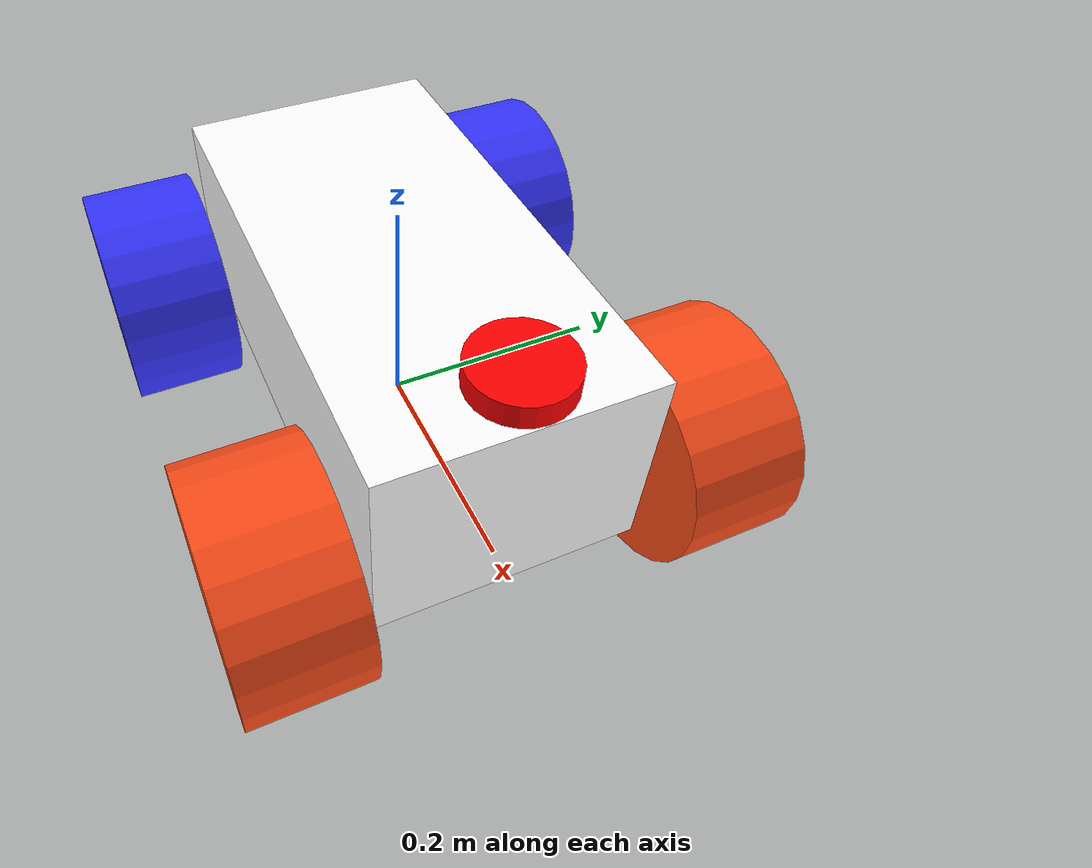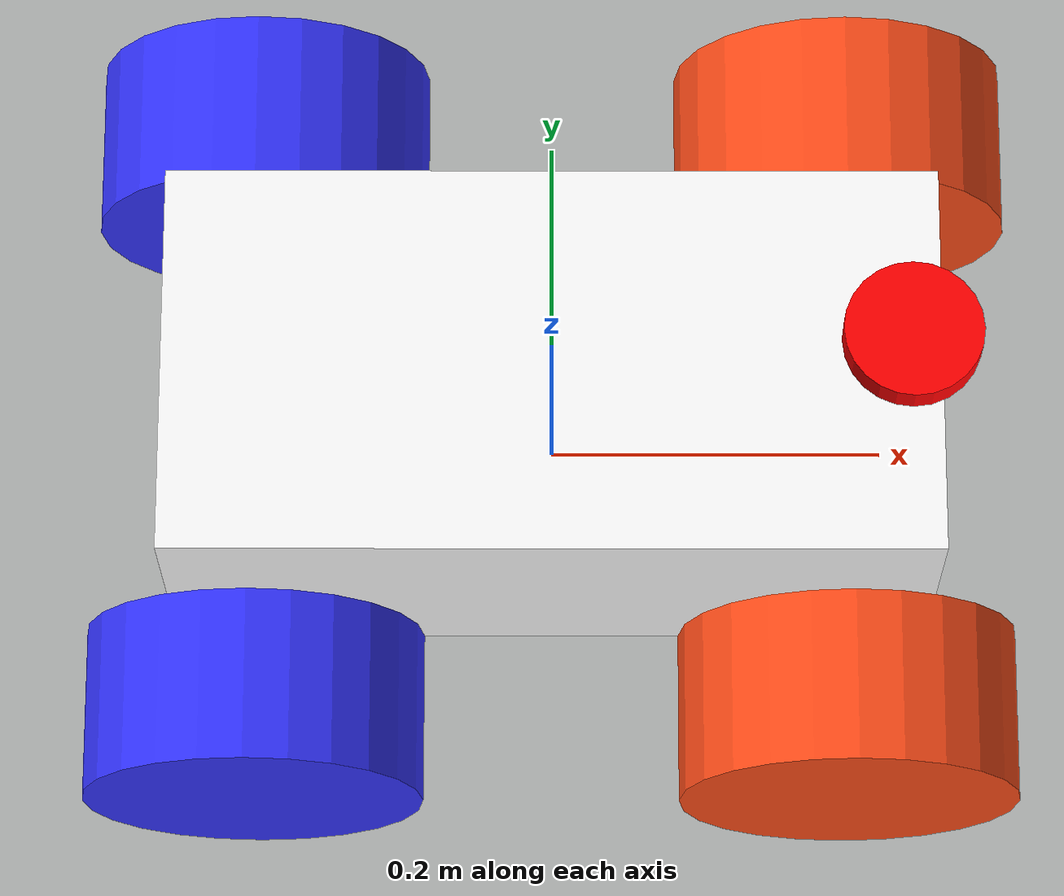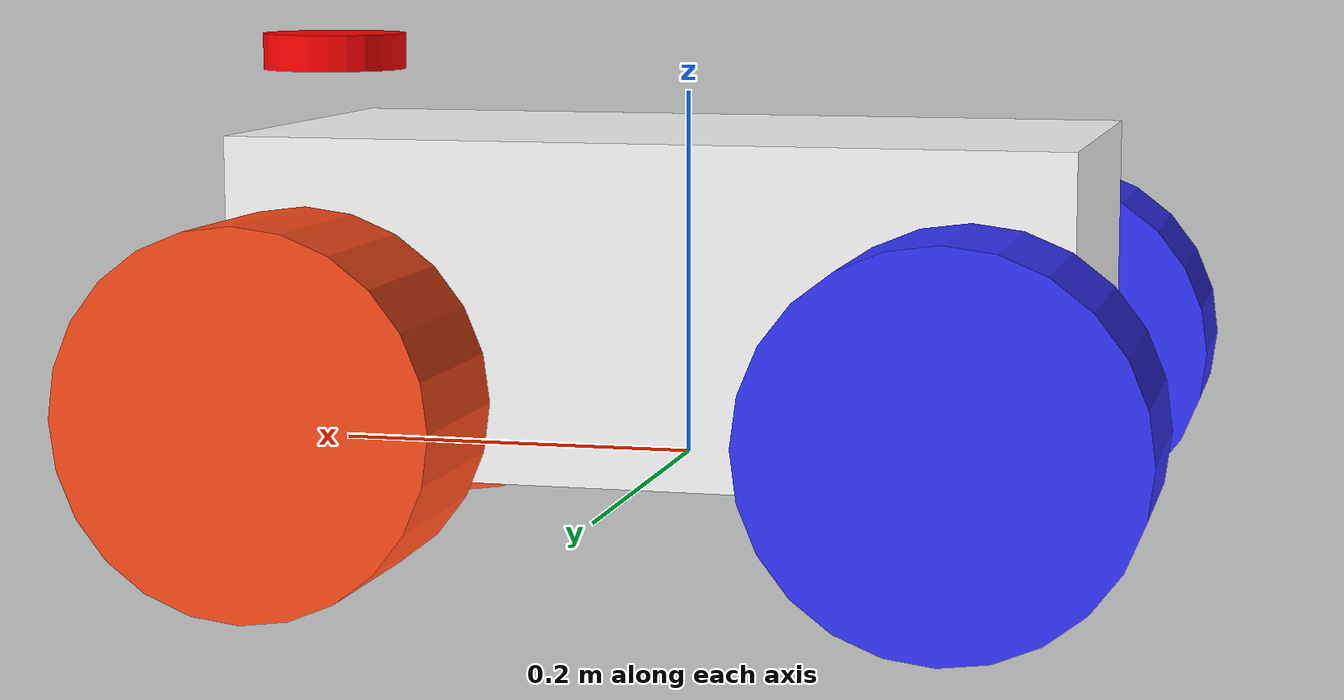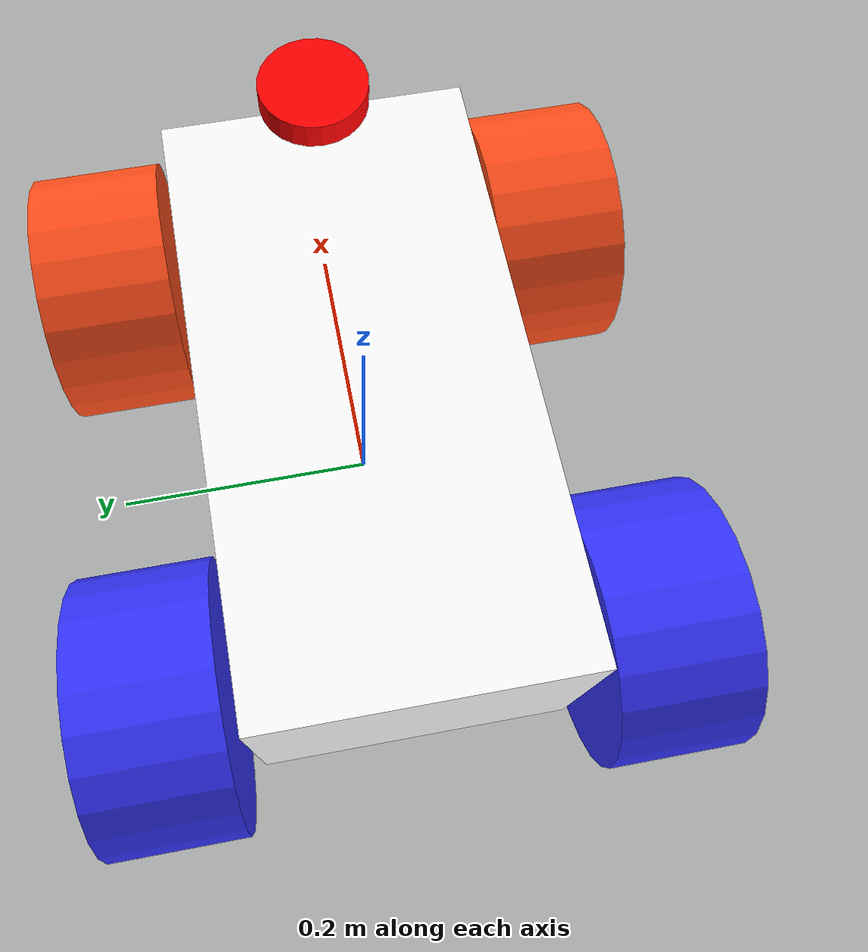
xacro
<?xml version="1.0"?>
<robot xmlns:xacro="http://www.ros.org/wiki/xacro"  name="robot">
    <xacro:include filename="robot_core.urdf.xacro" />
    <xacro:include filename="ros2_control.urdf.xacro" />
    <xacro:include filename="lidar.urdf.xacro" />
</robot>

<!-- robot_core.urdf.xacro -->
<robot xmlns:xacro="http://www.ros.org/wiki/xacro">
    <xacro:include filename="inertial_macros.xacro" />

    <material name="white">
        <color rgba="1 1 1 1" />
    </material>

    <material name="red">
        <color rgba="1 0 0 1" />
    </material>

    <material name="orange">
        <color rgba="1 0.3 0.1 1" />
    </material>

    <material name="blue">
        <color rgba="0.2 0.2 1 1" />
    </material>

    <material name="black">
        <color rgba="0 0 0 1" />
    </material>

    <!-- BASE LINK -->

    <link name="base_link">

    </link>

    <!-- CHASSIS LINK -->

    <joint name="chassis_joint" type="fixed">
        <parent link="base_link" />
        <child link="chassis" />
        <origin xyz="-0.225 0 0" />
    </joint>

    <link name="chassis">
        <visual>
            <origin xyz="0.225 0 0.09" />
            <geometry>
                <box size="0.450 0.23 0.18" />
            </geometry>
            <material name="white" />
        </visual>
        <collision>
            <origin xyz="0.225 0 0.09" />
            <geometry>
                <box size="0.450 0.23 0.18" />
            </geometry>
        </collision>
        <xacro:inertial_box mass="5.0" x="0.450" y="0.23" z="0.18">
            <origin xyz="0.225 0 0.09" rpy="0 0 0" />
        </xacro:inertial_box>
    </link>

    <gazebo reference="chassis">
        <material>Gazebo/White</material>
    </gazebo>

    <!-- LEFT FRONT WHEEL LINK -->

    <joint name="left_front_wheel_joint" type="continuous">
        <parent link="base_link" />
        <child link="left_front_wheel" />
        <origin xyz="0.175 0.178 .045" rpy="-${pi/2} 0 0" />
        <axis xyz="0 0 1" />
        <limit effort="1" velocity="1" />
        <joint_properties damping="1.0" friction="1.0" />
    </joint>

    <link name="left_front_wheel">
        <visual>
            <geometry>
                <cylinder radius="0.1" length="0.1" />
            </geometry>
            <material name="orange" />
        </visual>
        <collision>
            <geometry>
                <sphere radius="0.1" />
            </geometry>
        </collision>
        <xacro:inertial_cylinder mass="1.5" length="0.1" radius="0.1">
            <origin xyz="0 0 0" rpy="0 0 0" />
        </xacro:inertial_cylinder>
    </link>

    <gazebo reference="left_front_wheel">
        <material>Gazebo/Orange</material>
        <mu1 value="0.9" />
        <mu2 value="0.9" />
    </gazebo>

    <!-- LEFT BACK WHEEL LINK -->

    <joint name="left_back_wheel_joint" type="continuous">
        <parent link="base_link" />
        <child link="left_back_wheel" />
        <origin xyz="-0.175 0.178 .045" rpy="-${pi/2} 0 0" />
        <axis xyz="0 0 1" />
        <limit effort="1" velocity="1" />
        <joint_properties damping="1.0" friction="1.0" />
    </joint>

    <link name="left_back_wheel">
        <visual>
            <geometry>
                <cylinder radius="0.1" length="0.1" />
            </geometry>
            <material name="blue" />
        </visual>
        <collision>
            <geometry>
                <sphere radius="0.1" />
            </geometry>
        </collision>
        <xacro:inertial_cylinder mass="1.5" length="0.1" radius="0.1">
            <origin xyz="0 0 0" rpy="0 0 0" />
        </xacro:inertial_cylinder>
    </link>

    <gazebo reference="left_back_wheel">
        <material>Gazebo/Blue</material>
        <mu1 value="0.9" />
        <mu2 value="0.9" />
    </gazebo>

    <!-- RIGHT FRONT WHEEL LINK -->

    <joint name="right_front_wheel_joint" type="continuous">
        <parent link="base_link" />
        <child link="right_front_wheel" />
        <origin xyz="0.175 -0.178 .045" rpy="${pi/2} 0 0" />
        <axis xyz="0 0 -1" />
        <limit effort="1" velocity="1" />
        <joint_properties damping="1.0" friction="1.0" />
    </joint>

    <link name="right_front_wheel">
        <visual>
            <geometry>
                <cylinder radius="0.1" length="0.1" />
            </geometry>
            <material name="orange" />
        </visual>
        <collision>
            <geometry>
                <sphere radius="0.1" />
            </geometry>
        </collision>
        <xacro:inertial_cylinder mass="1.5" length="0.1" radius="0.1">
            <origin xyz="0 0 0" rpy="0 0 0" />
        </xacro:inertial_cylinder>
    </link>

    <gazebo reference="right_front_wheel">
        <material>Gazebo/Orange</material>
        <mu1 value="0.9" />
        <mu2 value="0.9" />
    </gazebo>

    <!-- RIGHT BACK WHEEL LINK -->

    <joint name="right_back_wheel_joint" type="continuous">
        <parent link="base_link" />
        <child link="right_back_wheel" />
        <origin xyz="-0.175 -0.178 .045" rpy="${pi/2} 0 0" />
        <axis xyz="0 0 -1" />
        <limit effort="1" velocity="1" />
        <joint_properties damping="1.0" friction="1.0" />
    </joint>

    <link name="right_back_wheel">
        <visual>
            <geometry>
                <cylinder radius="0.1" length="0.1" />
            </geometry>
            <material name="blue" />
        </visual>
        <collision>
            <geometry>
                <sphere radius="0.1" />
            </geometry>
        </collision>
        <xacro:inertial_cylinder mass="1.5" length="0.1" radius="0.1">
            <origin xyz="0 0 0" rpy="0 0 0" />
        </xacro:inertial_cylinder>
    </link>

    <gazebo reference="right_back_wheel">
        <material>Gazebo/Blue</material>
        <mu1 value="0.9" />
        <mu2 value="0.9" />
    </gazebo>

</robot>

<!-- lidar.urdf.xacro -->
<robot xmlns:xacro="http://www.ros.org/wiki/xacro">
    <joint name="laser_joint" type="fixed">
        <parent link="chassis" />
        <child link="laser_frame" />
        <origin xyz="0.430 0.0 0.22" rpy="0 0 0" />
    </joint>
    <link name="laser_frame">
        <visual>
            <geometry>
                <cylinder radius="0.04" length="0.02" />
            </geometry>
            <material name="red" />
        </visual>
        <collision>
            <geometry>
                <cylinder radius="0.04" length="0.02" />
            </geometry>
        </collision>
        <xacro:inertial_cylinder mass="0.25" length="0.02" radius="0.04">
            <origin xyz="0 0 0" rpy="0 0 0" />
        </xacro:inertial_cylinder>
    </link>

    <gazebo reference="laser_frame">
        <material>Gazebo/Red</material>

        <sensor name="laser" type="ray">
            <pose> 0 0 0 0 0 0 </pose>
            <visualize>true</visualize>
            <update_rate>10</update_rate>
            <ray>
                <scan>
                    <horizontal>
                        <samples>360</samples>
                        <min_angle>-3.14</min_angle>
                        <max_angle>3.14</max_angle>
                    </horizontal>
                </scan>
                <range>
                    <min>0.3</min>
                    <max>12</max>
                </range>
            </ray>
            <plugin name="laser_controller" filename="libgazebo_ros_ray_sensor.so">
                <ros>
                    <argument>~/out:=scan</argument>
                </ros>
                <output_type>sensor_msgs/LaserScan</output_type>
                <frame_name>laser_frame</frame_name>
            </plugin>
        </sensor>
    </gazebo>
</robot>
